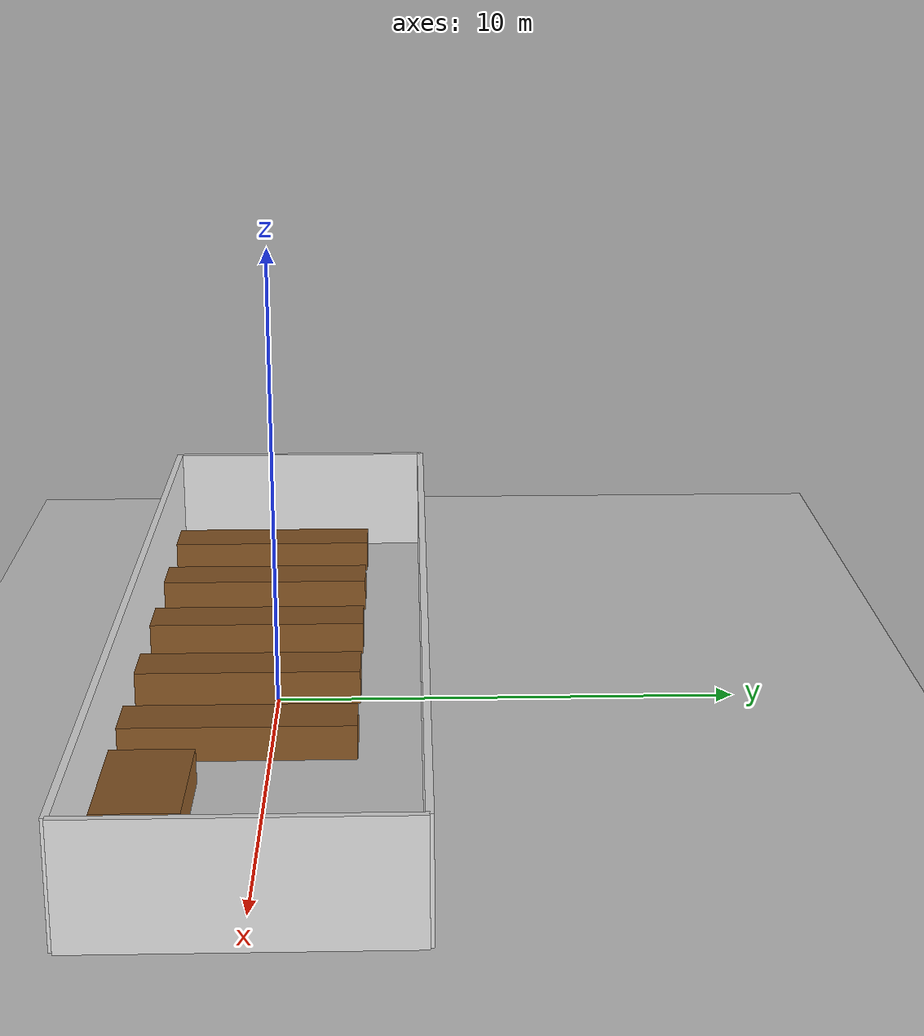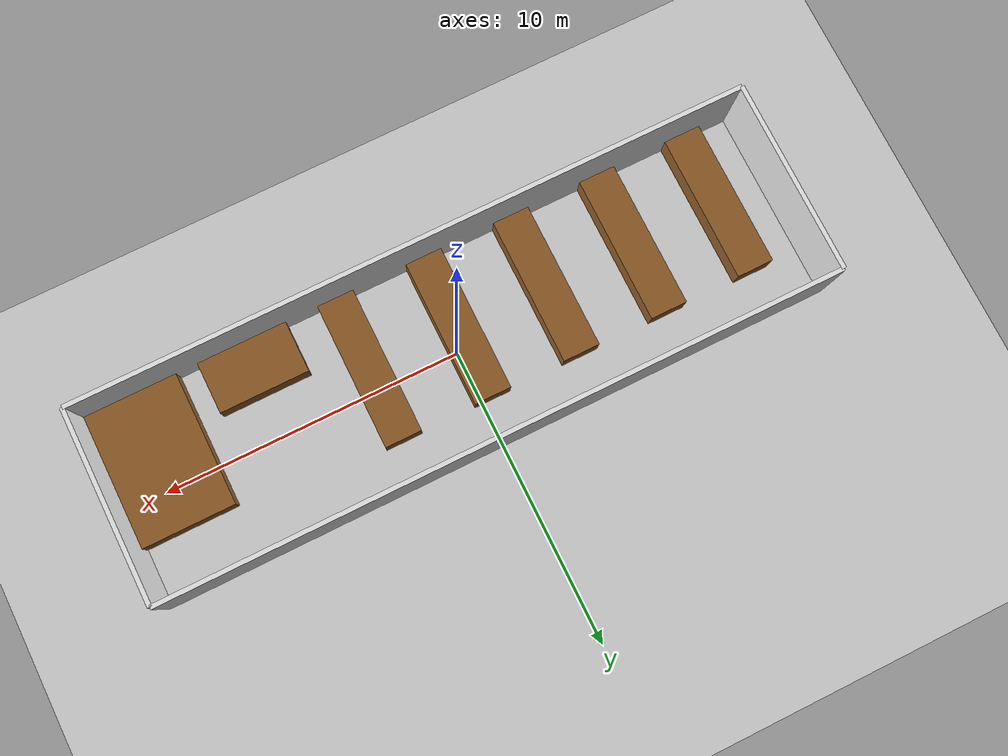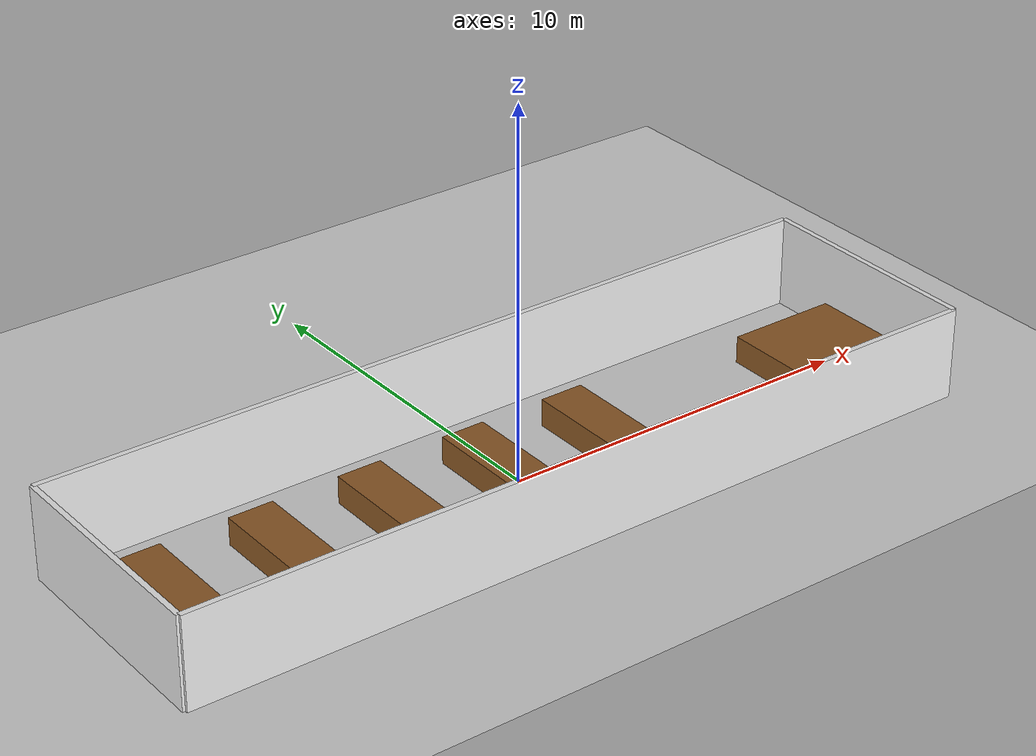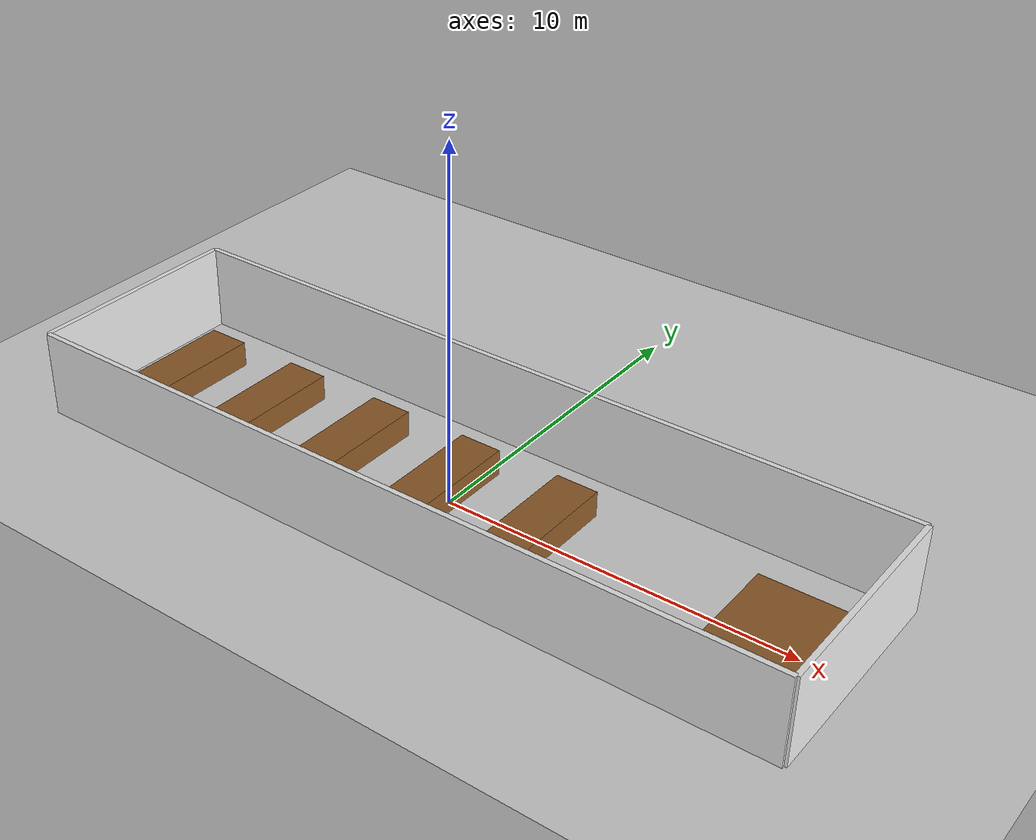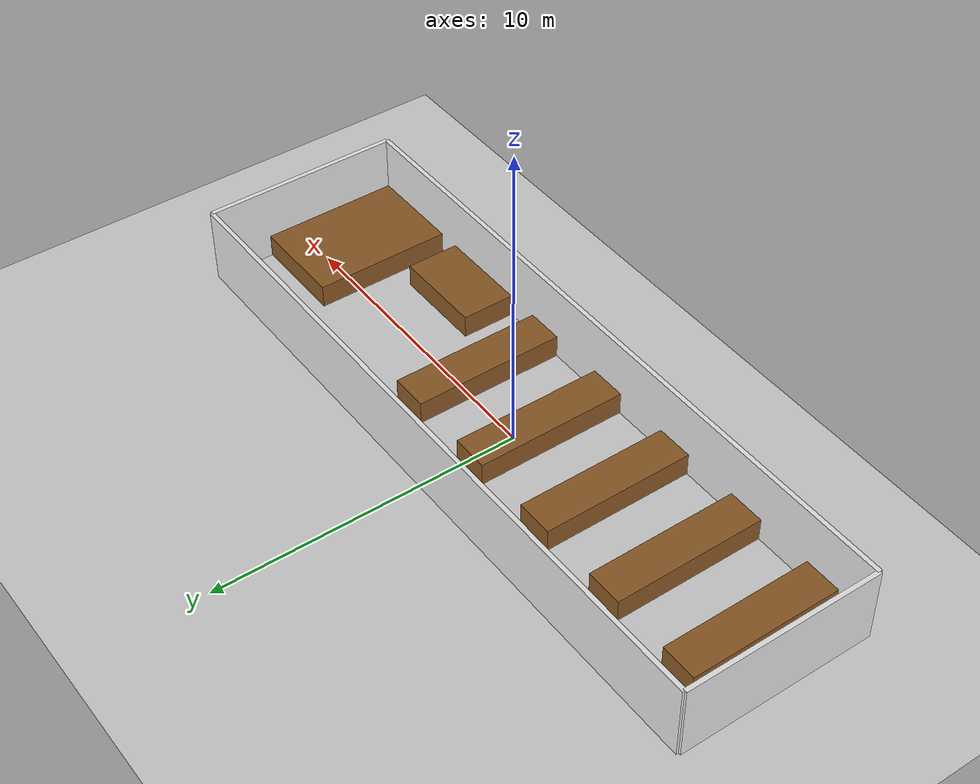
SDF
<sdf version="1.10">
 <world name="office_world">
  <physics name="1ms" type="ignored">
   <max_step_size>0.0040000000000000001</max_step_size>
   <real_time_factor>1</real_time_factor>
   <real_time_update_rate>250</real_time_update_rate>
  </physics>
  <plugin name="gz::sim::systems::SceneBroadcaster" filename="gz-sim-scene-broadcaster-system"/>
  <plugin name="gz::sim::systems::Physics" filename="gz-sim-physics-system"/>
  <plugin name="gz::sim::systems::UserCommands" filename="gz-sim-user-commands-system"/>
  <gravity>0 0 -9.8000000000000007</gravity>
  <magnetic_field>5.5644999999999998e-06 2.2875799999999999e-05 -4.2388400000000002e-05</magnetic_field>
  <atmosphere type="adiabatic"/>
  <scene>
   <ambient>0.400000006 0.400000006 0.400000006 1</ambient>
   <background>0.699999988 0.699999988 0.699999988 1</background>
   <shadows>false</shadows>
  </scene>
  <model name="ground_plane">
   <static>true</static>
   <link name="link">
    <collision name="collision">
     <geometry><plane><normal>0 0 1</normal><size>100 100</size></plane></geometry>
    </collision>
    <visual name="visual">
     <geometry><plane><normal>0 0 1</normal><size>100 100</size></plane></geometry>
     <material>
      <ambient>0.800000012 0.800000012 0.800000012 1</ambient>
      <diffuse>0.800000012 0.800000012 0.800000012 1</diffuse>
     </material>
    </visual>
    <inertial>
     <mass>1</mass>
     <inertia><ixx>1</ixx><ixy>0</ixy><ixz>0</ixz><iyy>1</iyy><iyz>0</iyz><izz>1</izz></inertia>
    </inertial>
   </link>
  </model>
  <model name="wall_north">
   <static>true</static>
   <pose>0 3.2000000000000002 1.25 0 0 0</pose>
   <link name="link">
    <collision name="col">
     <geometry><box><size>22.559999999999999 0.14999999999999999 2.5</size></box></geometry>
    </collision>
    <visual name="vis">
     <geometry><box><size>22.559999999999999 0.14999999999999999 2.5</size></box></geometry>
     <material>
      <ambient>0.899999976 0.899999976 0.899999976 1</ambient>
      <diffuse>0.899999976 0.899999976 0.899999976 1</diffuse>
     </material>
    </visual>
    <inertial>
     <mass>1</mass>
     <inertia><ixx>1</ixx><ixy>0</ixy><ixz>0</ixz><iyy>1</iyy><iyz>0</iyz><izz>1</izz></inertia>
    </inertial>
   </link>
  </model>
  <model name="wall_south">
   <static>true</static>
   <pose>0 -3.2000000000000002 1.25 0 0 0</pose>
   <link name="link">
    <collision name="col">
     <geometry><box><size>22.559999999999999 0.14999999999999999 2.5</size></box></geometry>
    </collision>
    <visual name="vis">
     <geometry><box><size>22.559999999999999 0.14999999999999999 2.5</size></box></geometry>
     <material>
      <ambient>0.899999976 0.899999976 0.899999976 1</ambient>
      <diffuse>0.899999976 0.899999976 0.899999976 1</diffuse>
     </material>
    </visual>
    <inertial>
     <mass>1</mass>
     <inertia><ixx>1</ixx><ixy>0</ixy><ixz>0</ixz><iyy>1</iyy><iyz>0</iyz><izz>1</izz></inertia>
    </inertial>
   </link>
  </model>
  <model name="wall_east">
   <static>true</static>
   <pose>11.279999999999999 0 1.25 0 0 0</pose>
   <link name="link">
    <collision name="col">
     <geometry><box><size>0.14999999999999999 6.4000000000000004 2.5</size></box></geometry>
    </collision>
    <visual name="vis">
     <geometry><box><size>0.14999999999999999 6.4000000000000004 2.5</size></box></geometry>
     <material>
      <ambient>0.899999976 0.899999976 0.899999976 1</ambient>
      <diffuse>0.899999976 0.899999976 0.899999976 1</diffuse>
     </material>
    </visual>
    <inertial>
     <mass>1</mass>
     <inertia><ixx>1</ixx><ixy>0</ixy><ixz>0</ixz><iyy>1</iyy><iyz>0</iyz><izz>1</izz></inertia>
    </inertial>
   </link>
  </model>
  <model name="wall_west">
   <static>true</static>
   <pose>-11.279999999999999 0 1.25 0 0 0</pose>
   <link name="link">
    <collision name="col">
     <geometry><box><size>0.14999999999999999 6.4000000000000004 2.5</size></box></geometry>
    </collision>
    <visual name="vis">
     <geometry><box><size>0.14999999999999999 6.4000000000000004 2.5</size></box></geometry>
     <material>
      <ambient>0.899999976 0.899999976 0.899999976 1</ambient>
      <diffuse>0.899999976 0.899999976 0.899999976 1</diffuse>
     </material>
    </visual>
    <inertial>
     <mass>1</mass>
     <inertia><ixx>1</ixx><ixy>0</ixy><ixz>0</ixz><iyy>1</iyy><iyz>0</iyz><izz>1</izz></inertia>
    </inertial>
   </link>
  </model>
  <model name="desk_row_1">
   <static>true</static>
   <pose>-9.5250000000000004 -0.69999999999999996 0.375 0 0 0</pose>
   <link name="link">
    <collision name="col"><geometry><box><size>1.2250000000000001 5 0.75</size></box></geometry></collision>
    <visual name="vis">
     <geometry><box><size>1.2250000000000001 5 0.75</size></box></geometry>
     <material>
      <ambient>0.550000012 0.349999994 0.150000006 1</ambient>
      <diffuse>0.550000012 0.349999994 0.150000006 1</diffuse>
     </material>
    </visual>
    <inertial>
     <mass>1</mass>
     <inertia><ixx>1</ixx><ixy>0</ixy><ixz>0</ixz><iyy>1</iyy><iyz>0</iyz><izz>1</izz></inertia>
    </inertial>
   </link>
  </model>
  <model name="desk_row_2">
   <static>true</static>
   <pose>-6.4699999999999998 -0.69999999999999996 0.375 0 0 0</pose>
   <link name="link">
    <collision name="col"><geometry><box><size>1.2250000000000001 5 0.75</size></box></geometry></collision>
    <visual name="vis">
     <geometry><box><size>1.2250000000000001 5 0.75</size></box></geometry>
     <material>
      <ambient>0.550000012 0.349999994 0.150000006 1</ambient>
      <diffuse>0.550000012 0.349999994 0.150000006 1</diffuse>
     </material>
    </visual>
    <inertial>
     <mass>1</mass>
     <inertia><ixx>1</ixx><ixy>0</ixy><ixz>0</ixz><iyy>1</iyy><iyz>0</iyz><izz>1</izz></inertia>
    </inertial>
   </link>
  </model>
  <model name="desk_row_3">
   <static>true</static>
   <pose>-3.415 -0.69999999999999996 0.375 0 0 0</pose>
   <link name="link">
    <collision name="col"><geometry><box><size>1.2250000000000001 5 0.75</size></box></geometry></collision>
    <visual name="vis">
     <geometry><box><size>1.2250000000000001 5 0.75</size></box></geometry>
     <material>
      <ambient>0.550000012 0.349999994 0.150000006 1</ambient>
      <diffuse>0.550000012 0.349999994 0.150000006 1</diffuse>
     </material>
    </visual>
    <inertial>
     <mass>1</mass>
     <inertia><ixx>1</ixx><ixy>0</ixy><ixz>0</ixz><iyy>1</iyy><iyz>0</iyz><izz>1</izz></inertia>
    </inertial>
   </link>
  </model>
  <model name="desk_row_4">
   <static>true</static>
   <pose>-0.35999999999999999 -0.69999999999999996 0.375 0 0 0</pose>
   <link name="link">
    <collision name="col"><geometry><box><size>1.2250000000000001 5 0.75</size></box></geometry></collision>
    <visual name="vis">
     <geometry><box><size>1.2250000000000001 5 0.75</size></box></geometry>
     <material>
      <ambient>0.550000012 0.349999994 0.150000006 1</ambient>
      <diffuse>0.550000012 0.349999994 0.150000006 1</diffuse>
     </material>
    </visual>
    <inertial>
     <mass>1</mass>
     <inertia><ixx>1</ixx><ixy>0</ixy><ixz>0</ixz><iyy>1</iyy><iyz>0</iyz><izz>1</izz></inertia>
    </inertial>
   </link>
  </model>
  <model name="desk_row_5">
   <static>true</static>
   <pose>2.6949999999999998 -0.69999999999999996 0.375 0 0 0</pose>
   <link name="link">
    <collision name="col"><geometry><box><size>1.2250000000000001 5 0.75</size></box></geometry></collision>
    <visual name="vis">
     <geometry><box><size>1.2250000000000001 5 0.75</size></box></geometry>
     <material>
      <ambient>0.550000012 0.349999994 0.150000006 1</ambient>
      <diffuse>0.550000012 0.349999994 0.150000006 1</diffuse>
     </material>
    </visual>
    <inertial>
     <mass>1</mass>
     <inertia><ixx>1</ixx><ixy>0</ixy><ixz>0</ixz><iyy>1</iyy><iyz>0</iyz><izz>1</izz></inertia>
    </inertial>
   </link>
  </model>
  <model name="desk_block_1">
   <static>true</static>
   <pose>5.8970000000000002 -2.2999999999999998 0.375 0 0 0</pose>
   <link name="link">
    <collision name="col"><geometry><box><size>3 1.8 0.75</size></box></geometry></collision>
    <visual name="vis">
     <geometry><box><size>3 1.8 0.75</size></box></geometry>
     <material>
      <ambient>0.550000012 0.349999994 0.150000006 1</ambient>
      <diffuse>0.550000012 0.349999994 0.150000006 1</diffuse>
     </material>
    </visual>
    <inertial>
     <mass>1</mass>
     <inertia><ixx>1</ixx><ixy>0</ixy><ixz>0</ixz><iyy>1</iyy><iyz>0</iyz><izz>1</izz></inertia>
    </inertial>
   </link>
  </model>
  <model name="desk_block_2">
   <static>true</static>
   <pose>9.6969999999999992 -0.93000000000000005 0.375 0 0 0</pose>
   <link name="link">
    <collision name="col"><geometry><box><size>3.165 4.5460000000000003 0.75</size></box></geometry></collision>
    <visual name="vis">
     <geometry><box><size>3.165 4.5460000000000003 0.75</size></box></geometry>
     <material>
      <ambient>0.550000012 0.349999994 0.150000006 1</ambient>
      <diffuse>0.550000012 0.349999994 0.150000006 1</diffuse>
     </material>
    </visual>
    <inertial>
     <mass>1</mass>
     <inertia><ixx>1</ixx><ixy>0</ixy><ixz>0</ixz><iyy>1</iyy><iyz>0</iyz><izz>1</izz></inertia>
    </inertial>
   </link>
  </model>
  <light name="sun" type="directional">
   <pose>0 0 10 0 0 0</pose>
   <intensity>1</intensity>
   <direction>-0.5 0.10000000000000001 -0.90000000000000002</direction>
   <diffuse>0.800000012 0.800000012 0.800000012 1</diffuse>
   <specular>0.200000003 0.200000003 0.200000003 1</specular>
   <attenuation>
    <range>1000</range>
    <linear>0.01</linear>
    <constant>0.90000000000000002</constant>
    <quadratic>0.001</quadratic>
   </attenuation>
   <spot><inner_angle>0</inner_angle><outer_angle>0</outer_angle><falloff>0</falloff></spot>
  </light>
 </world>
</sdf>
